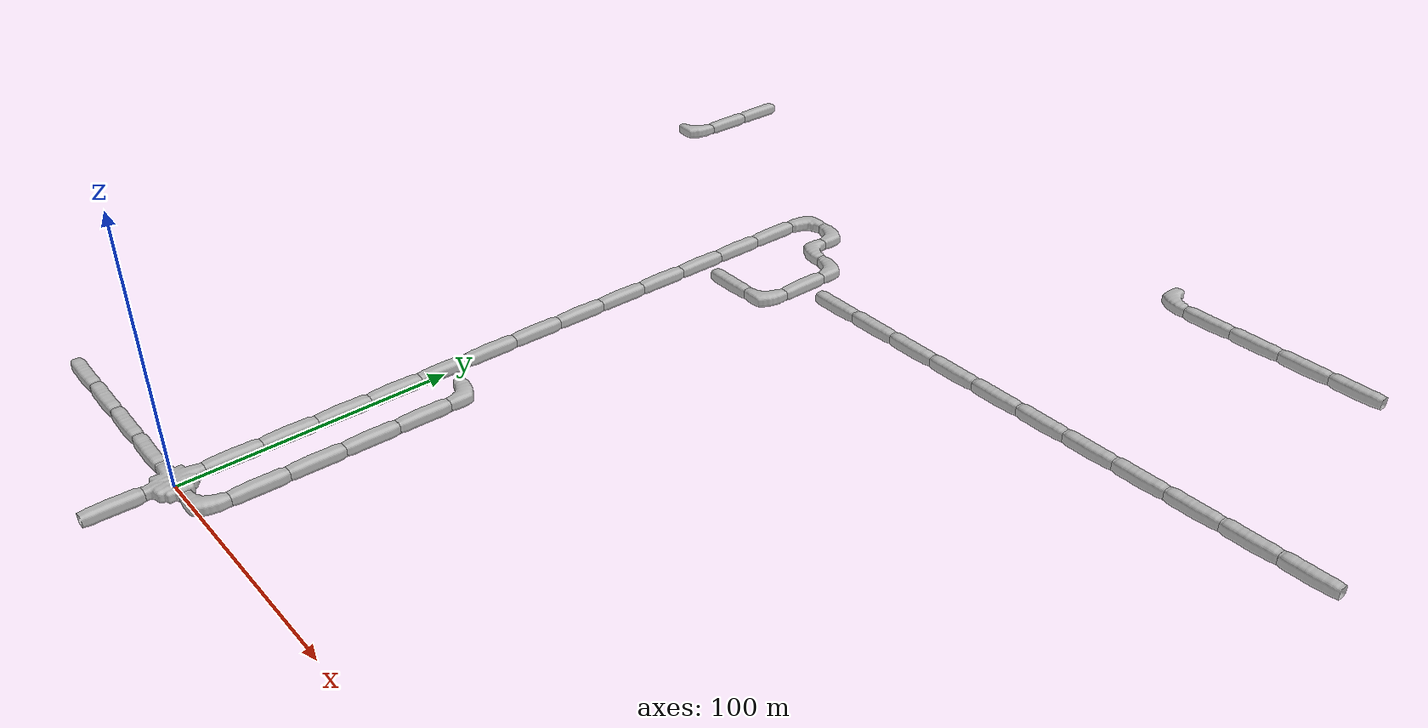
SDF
<sdf version="1.6">
 <world name="cave_16000_32">
  <include>
   <static>true</static>
   <name>cave_0_0</name>
   <pose>0 0 0 0 0 -1.5707963267948966</pose>
   <uri>model://cave_4way_20m</uri>
  </include>
  <include>
   <static>true</static>
   <name>cave_1_0</name>
   <pose>20 0 0 0 0 1.5707963267948966</pose>
   <uri>model://cave_L_20m</uri>
  </include>
  <include>
   <static>true</static>
   <name>cave_1_1</name>
   <pose>20 20 0 0 0 0.0</pose>
   <uri>model://cave_straight_20m</uri>
  </include>
  <include>
   <static>true</static>
   <name>cave_1_2</name>
   <pose>20 40 0 0 0 0.0</pose>
   <uri>model://cave_straight_20m</uri>
  </include>
  <include>
   <static>true</static>
   <name>cave_1_3</name>
   <pose>20 60 0 0 0 0.0</pose>
   <uri>model://cave_straight_20m</uri>
  </include>
  <include>
   <static>true</static>
   <name>cave_1_4</name>
   <pose>20 80 0 0 0 0.0</pose>
   <uri>model://cave_straight_20m</uri>
  </include>
  <include>
   <static>true</static>
   <name>cave_1_5</name>
   <pose>20 100 0 0 0 3.141592653589793</pose>
   <uri>model://cave_L_20m</uri>
  </include>
  <include>
   <static>true</static>
   <name>cave_0_-1</name>
   <pose>0 -20 0 0 0 0.0</pose>
   <uri>model://cave_straight_20m</uri>
  </include>
  <include>
   <static>true</static>
   <name>cave_-1_0</name>
   <pose>-20 0 0 0 0 1.5707963267948966</pose>
   <uri>model://cave_straight_20m</uri>
  </include>
  <include>
   <static>true</static>
   <name>cave_-2_0</name>
   <pose>-40 0 0 0 0 1.5707963267948966</pose>
   <uri>model://cave_straight_20m</uri>
  </include>
  <include>
   <static>true</static>
   <name>cave_-3_0</name>
   <pose>-60 0 0 0 0 1.5707963267948966</pose>
   <uri>model://cave_straight_20m</uri>
  </include>
  <include>
   <static>true</static>
   <name>cave_-4_0</name>
   <pose>-80 0 0 0 0 1.5707963267948966</pose>
   <uri>model://cave_straight_20m</uri>
  </include>
  <include>
   <static>true</static>
   <name>cave_-5_15</name>
   <pose>-100 300 0 0 0 1.5707963267948966</pose>
   <uri>model://cave_L_20m</uri>
  </include>
  <include>
   <static>true</static>
   <name>cave_-5_16</name>
   <pose>-100 320 0 0 0 0.0</pose>
   <uri>model://cave_straight_20m</uri>
  </include>
  <include>
   <static>true</static>
   <name>cave_-5_17</name>
   <pose>-100 340 0 0 0 0.0</pose>
   <uri>model://cave_straight_20m</uri>
  </include>
  <include>
   <static>true</static>
   <name>cave_7_17</name>
   <pose>140 340 0 0 0 0.0</pose>
   <uri>model://cave_L_20m</uri>
  </include>
  <include>
   <static>true</static>
   <name>cave_8_17</name>
   <pose>160 340 0 0 0 1.5707963267948966</pose>
   <uri>model://cave_straight_20m</uri>
  </include>
  <include>
   <static>true</static>
   <name>cave_9_17</name>
   <pose>180 340 0 0 0 1.5707963267948966</pose>
   <uri>model://cave_straight_20m</uri>
  </include>
  <include>
   <static>true</static>
   <name>cave_10_17</name>
   <pose>200 340 0 0 0 1.5707963267948966</pose>
   <uri>model://cave_straight_20m</uri>
  </include>
  <include>
   <static>true</static>
   <name>cave_11_17</name>
   <pose>220 340 0 0 0 1.5707963267948966</pose>
   <uri>model://cave_straight_20m</uri>
  </include>
  <include>
   <static>true</static>
   <name>cave_13_12</name>
   <pose>260 240 0 0 0 1.5707963267948966</pose>
   <uri>model://cave_straight_20m</uri>
  </include>
  <include>
   <static>true</static>
   <name>cave_12_12</name>
   <pose>240 240 0 0 0 1.5707963267948966</pose>
   <uri>model://cave_straight_20m</uri>
  </include>
  <include>
   <static>true</static>
   <name>cave_11_12</name>
   <pose>220 240 0 0 0 1.5707963267948966</pose>
   <uri>model://cave_straight_20m</uri>
  </include>
  <include>
   <static>true</static>
   <name>cave_10_12</name>
   <pose>200 240 0 0 0 1.5707963267948966</pose>
   <uri>model://cave_straight_20m</uri>
  </include>
  <include>
   <static>true</static>
   <name>cave_9_12</name>
   <pose>180 240 0 0 0 1.5707963267948966</pose>
   <uri>model://cave_straight_20m</uri>
  </include>
  <include>
   <static>true</static>
   <name>cave_8_12</name>
   <pose>160 240 0 0 0 1.5707963267948966</pose>
   <uri>model://cave_straight_20m</uri>
  </include>
  <include>
   <static>true</static>
   <name>cave_7_12</name>
   <pose>140 240 0 0 0 1.5707963267948966</pose>
   <uri>model://cave_straight_20m</uri>
  </include>
  <include>
   <static>true</static>
   <name>cave_6_12</name>
   <pose>120 240 0 0 0 1.5707963267948966</pose>
   <uri>model://cave_straight_20m</uri>
  </include>
  <include>
   <static>true</static>
   <name>cave_5_12</name>
   <pose>100 240 0 0 0 1.5707963267948966</pose>
   <uri>model://cave_straight_20m</uri>
  </include>
  <include>
   <static>true</static>
   <name>cave_4_12</name>
   <pose>80 240 0 0 0 1.5707963267948966</pose>
   <uri>model://cave_straight_20m</uri>
  </include>
  <include>
   <static>true</static>
   <name>cave_3_12</name>
   <pose>60 240 0 0 0 1.5707963267948966</pose>
   <uri>model://cave_straight_20m</uri>
  </include>
  <include>
   <static>true</static>
   <name>cave_0_1</name>
   <pose>0 20 0 0 0 0.0</pose>
   <uri>model://cave_straight_20m</uri>
  </include>
  <include>
   <static>true</static>
   <name>cave_0_2</name>
   <pose>0 40 0 0 0 0.0</pose>
   <uri>model://cave_straight_20m</uri>
  </include>
  <include>
   <static>true</static>
   <name>cave_0_3</name>
   <pose>0 60 0 0 0 0.0</pose>
   <uri>model://cave_straight_20m</uri>
  </include>
  <include>
   <static>true</static>
   <name>cave_0_4</name>
   <pose>0 80 0 0 0 0.0</pose>
   <uri>model://cave_straight_20m</uri>
  </include>
  <include>
   <static>true</static>
   <name>cave_0_5</name>
   <pose>0 100 0 0 0 0.0</pose>
   <uri>model://cave_straight_20m</uri>
  </include>
  <include>
   <static>true</static>
   <name>cave_0_6</name>
   <pose>0 120 0 0 0 0.0</pose>
   <uri>model://cave_straight_20m</uri>
  </include>
  <include>
   <static>true</static>
   <name>cave_0_7</name>
   <pose>0 140 0 0 0 0.0</pose>
   <uri>model://cave_straight_20m</uri>
  </include>
  <include>
   <static>true</static>
   <name>cave_0_8</name>
   <pose>0 160 0 0 0 0.0</pose>
   <uri>model://cave_straight_20m</uri>
  </include>
  <include>
   <static>true</static>
   <name>cave_0_9</name>
   <pose>0 180 0 0 0 0.0</pose>
   <uri>model://cave_straight_20m</uri>
  </include>
  <include>
   <static>true</static>
   <name>cave_0_10</name>
   <pose>0 200 0 0 0 0.0</pose>
   <uri>model://cave_straight_20m</uri>
  </include>
  <include>
   <static>true</static>
   <name>cave_0_11</name>
   <pose>0 220 0 0 0 0.0</pose>
   <uri>model://cave_straight_20m</uri>
  </include>
  <include>
   <static>true</static>
   <name>cave_0_12</name>
   <pose>0 240 0 0 0 0.0</pose>
   <uri>model://cave_straight_20m</uri>
  </include>
  <include>
   <static>true</static>
   <name>cave_0_13</name>
   <pose>0 260 0 0 0 0.0</pose>
   <uri>model://cave_straight_20m</uri>
  </include>
  <include>
   <static>true</static>
   <name>cave_0_14</name>
   <pose>0 280 0 0 0 -1.5707963267948966</pose>
   <uri>model://cave_L_20m</uri>
  </include>
  <include>
   <static>true</static>
   <name>cave_1_14</name>
   <pose>20 280 0 0 0 3.141592653589793</pose>
   <uri>model://cave_L_20m</uri>
  </include>
  <include>
   <static>true</static>
   <name>cave_1_13</name>
   <pose>20 260 0 0 0 0.0</pose>
   <uri>model://cave_L_20m</uri>
  </include>
  <include>
   <static>true</static>
   <name>cave_2_13</name>
   <pose>40 260 0 0 0 3.141592653589793</pose>
   <uri>model://cave_L_20m</uri>
  </include>
  <include>
   <static>true</static>
   <name>cave_2_12</name>
   <pose>40 240 0 0 0 0.0</pose>
   <uri>model://cave_straight_20m</uri>
  </include>
  <include>
   <static>true</static>
   <name>cave_2_11</name>
   <pose>40 220 0 0 0 1.5707963267948966</pose>
   <uri>model://cave_L_20m</uri>
  </include>
  <include>
   <static>true</static>
   <name>cave_1_11</name>
   <pose>20 220 0 0 0 1.5707963267948966</pose>
   <uri>model://cave_straight_20m</uri>
  </include>
 </world>
</sdf>
